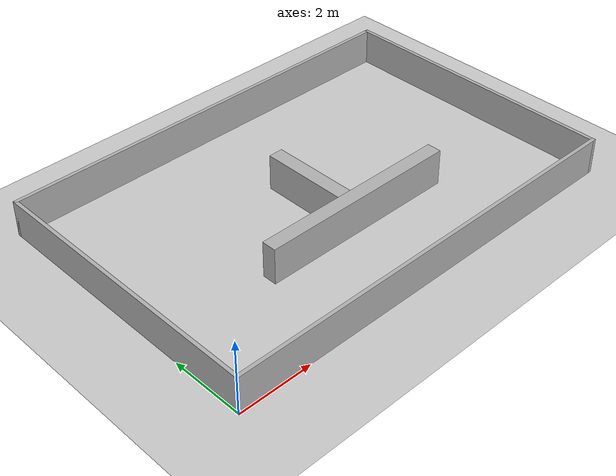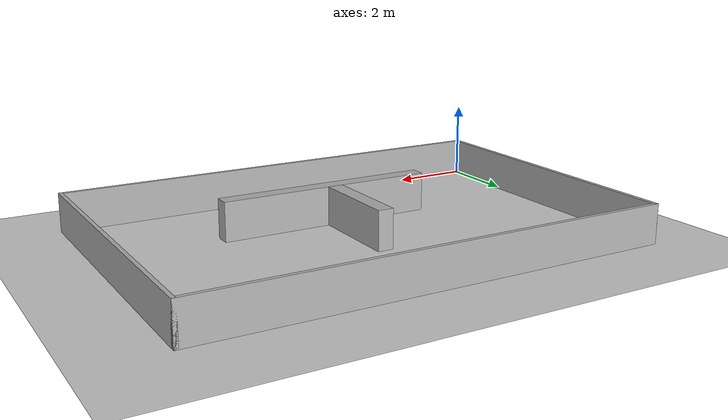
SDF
<?xml version="1.0" ?>
<sdf version="1.7">
  <world name="multigoal">
    <gravity>0 0 -9.8</gravity>
    <include><uri>model://ground_plane</uri></include>
    <include><uri>model://sun</uri></include>

    <model name="box_0">
      <static>true</static>
      <pose>6.000 0.050 0.500 0 0 0</pose>
      <link name="link">
        <collision name="collision">
          <geometry><box><size>12.000 0.100 1.000</size></box></geometry>
        </collision>
        <visual name="visual">
          <geometry><box><size>12.000 0.100 1.000</size></box></geometry>
          <material><ambient>0.7 0.7 0.7 1</ambient><diffuse>0.7 0.7 0.7 1</diffuse></material>
        </visual>
      </link>
    </model>

    <model name="box_1">
      <static>true</static>
      <pose>6.000 7.950 0.500 0 0 0</pose>
      <link name="link">
        <collision name="collision">
          <geometry><box><size>12.000 0.100 1.000</size></box></geometry>
        </collision>
        <visual name="visual">
          <geometry><box><size>12.000 0.100 1.000</size></box></geometry>
          <material><ambient>0.7 0.7 0.7 1</ambient><diffuse>0.7 0.7 0.7 1</diffuse></material>
        </visual>
      </link>
    </model>

    <model name="box_2">
      <static>true</static>
      <pose>0.050 4.000 0.500 0 0 0</pose>
      <link name="link">
        <collision name="collision">
          <geometry><box><size>0.100 8.000 1.000</size></box></geometry>
        </collision>
        <visual name="visual">
          <geometry><box><size>0.100 8.000 1.000</size></box></geometry>
          <material><ambient>0.7 0.7 0.7 1</ambient><diffuse>0.7 0.7 0.7 1</diffuse></material>
        </visual>
      </link>
    </model>

    <model name="box_3">
      <static>true</static>
      <pose>11.950 4.000 0.500 0 0 0</pose>
      <link name="link">
        <collision name="collision">
          <geometry><box><size>0.100 8.000 1.000</size></box></geometry>
        </collision>
        <visual name="visual">
          <geometry><box><size>0.100 8.000 1.000</size></box></geometry>
          <material><ambient>0.7 0.7 0.7 1</ambient><diffuse>0.7 0.7 0.7 1</diffuse></material>
        </visual>
      </link>
    </model>

    <model name="box_4">
      <static>true</static>
      <pose>6.000 2.600 0.500 0 0 0</pose>
      <link name="link">
        <collision name="collision">
          <geometry><box><size>5.600 0.400 1.000</size></box></geometry>
        </collision>
        <visual name="visual">
          <geometry><box><size>5.600 0.400 1.000</size></box></geometry>
          <material><ambient>0.7 0.7 0.7 1</ambient><diffuse>0.7 0.7 0.7 1</diffuse></material>
        </visual>
      </link>
    </model>

    <model name="box_5">
      <static>true</static>
      <pose>5.800 4.000 0.500 0 0 0</pose>
      <link name="link">
        <collision name="collision">
          <geometry><box><size>0.400 2.400 1.000</size></box></geometry>
        </collision>
        <visual name="visual">
          <geometry><box><size>0.400 2.400 1.000</size></box></geometry>
          <material><ambient>0.7 0.7 0.7 1</ambient><diffuse>0.7 0.7 0.7 1</diffuse></material>
        </visual>
      </link>
    </model>
  </world>
</sdf>
